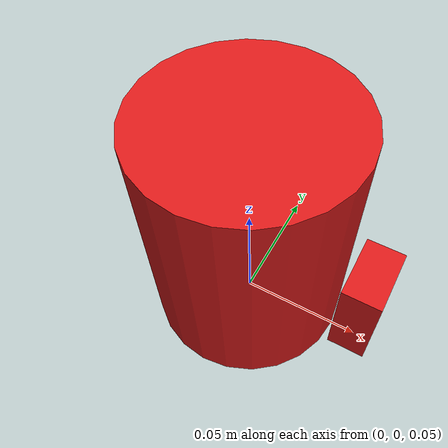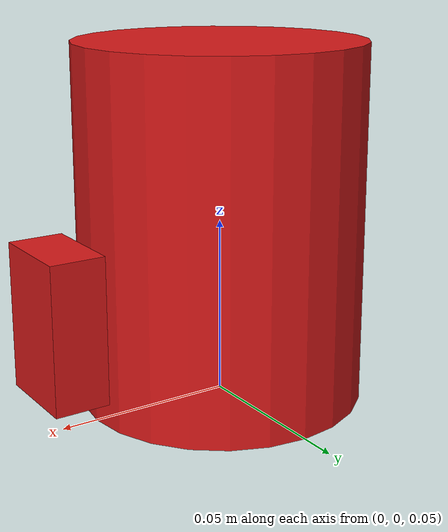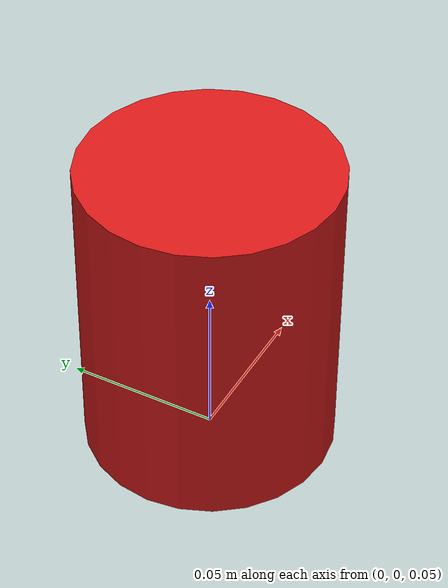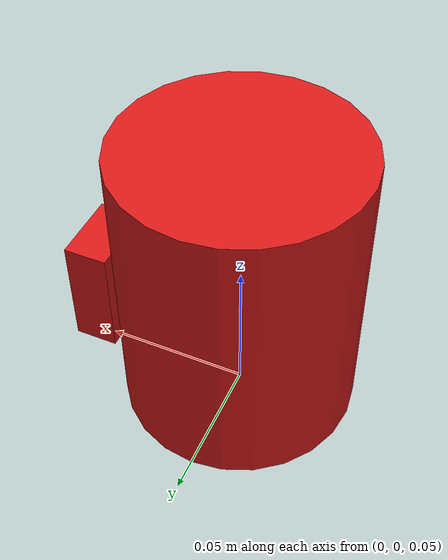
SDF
<?xml version="1.0" encoding="utf-8"?>
<!--
  Cup model — a cylindrical cup for grasping tasks.
  Red with a hollow interior (simplified as solid for collision).
-->
<sdf version="1.9">
  <model name="cup">
    <pose>0 0 0.05 0 0 0</pose>

    <!-- Cup body -->
    <link name="cup_body">
      <pose>0 0 0.05 0 0 0</pose>
      <inertial>
        <mass>0.05</mass>
        <inertia>
          <ixx>0.00005</ixx> <ixy>0.0</ixy> <ixz>0.0</ixz>
          <iyy>0.00005</iyy> <iyz>0.0</iyz>
          <izz>0.00003</izz>
        </inertia>
      </inertial>
      <visual name="cup_visual">
        <geometry>
          <cylinder>
            <radius>0.04</radius>
            <length>0.10</length>
          </cylinder>
        </geometry>
        <material>
          <ambient>0.85 0.1 0.1 1</ambient>
          <diffuse>0.85 0.1 0.1 1</diffuse>
          <specular>0.2 0.2 0.2 1</specular>
        </material>
      </visual>
      <collision name="cup_collision">
        <geometry>
          <cylinder>
            <radius>0.04</radius>
            <length>0.10</length>
          </cylinder>
        </geometry>
      </collision>
    </link>

    <!-- Cup handle (small box on the side) -->
    <link name="cup_handle">
      <pose>0.05 0 0.03 0 0 0</pose>
      <inertial>
        <mass>0.005</mass>
        <inertia>
          <ixx>0.000001</ixx> <ixy>0.0</ixy> <ixz>0.0</ixz>
          <iyy>0.000001</iyy> <iyz>0.0</iyz>
          <izz>0.000001</izz>
        </inertia>
      </inertial>
      <visual name="handle_visual">
        <geometry>
          <box>
            <size>0.015 0.025 0.04</size>
          </box>
        </geometry>
        <material>
          <ambient>0.85 0.1 0.1 1</ambient>
          <diffuse>0.85 0.1 0.1 1</diffuse>
        </material>
      </visual>
      <collision name="handle_collision">
        <geometry>
          <box>
            <size>0.015 0.025 0.04</size>
          </box>
        </geometry>
      </collision>
    </link>

    <joint name="handle_joint" type="fixed">
      <parent>cup_body</parent>
      <child>cup_handle</child>
    </joint>

  </model>
</sdf>
